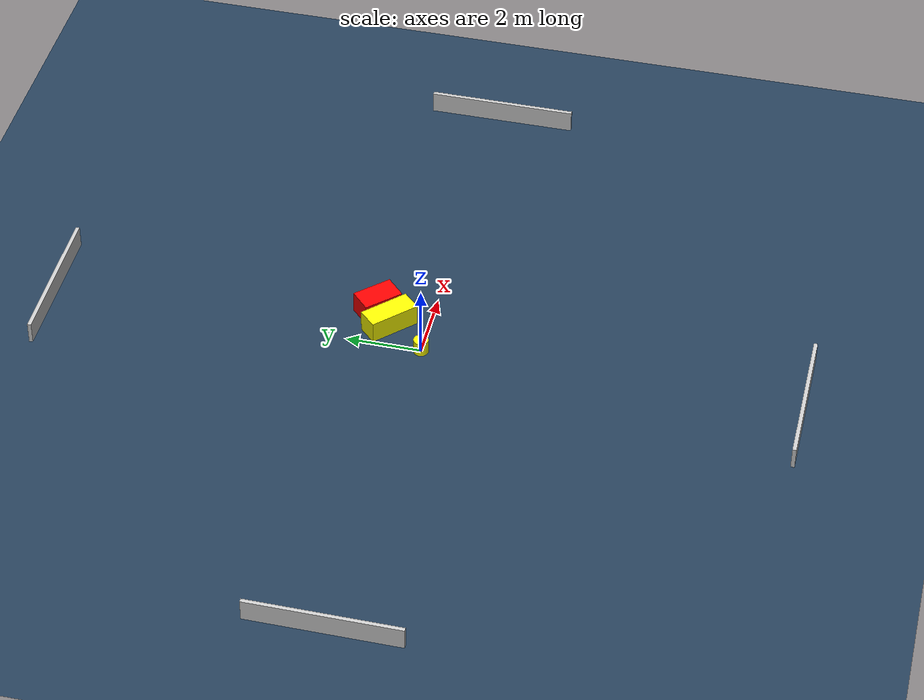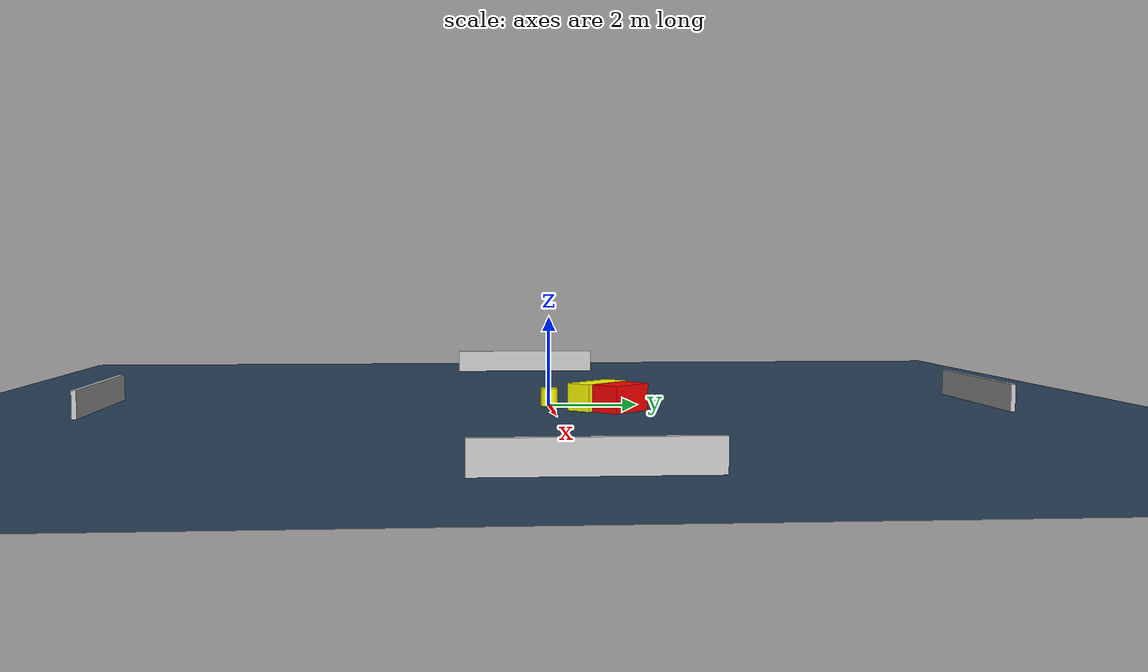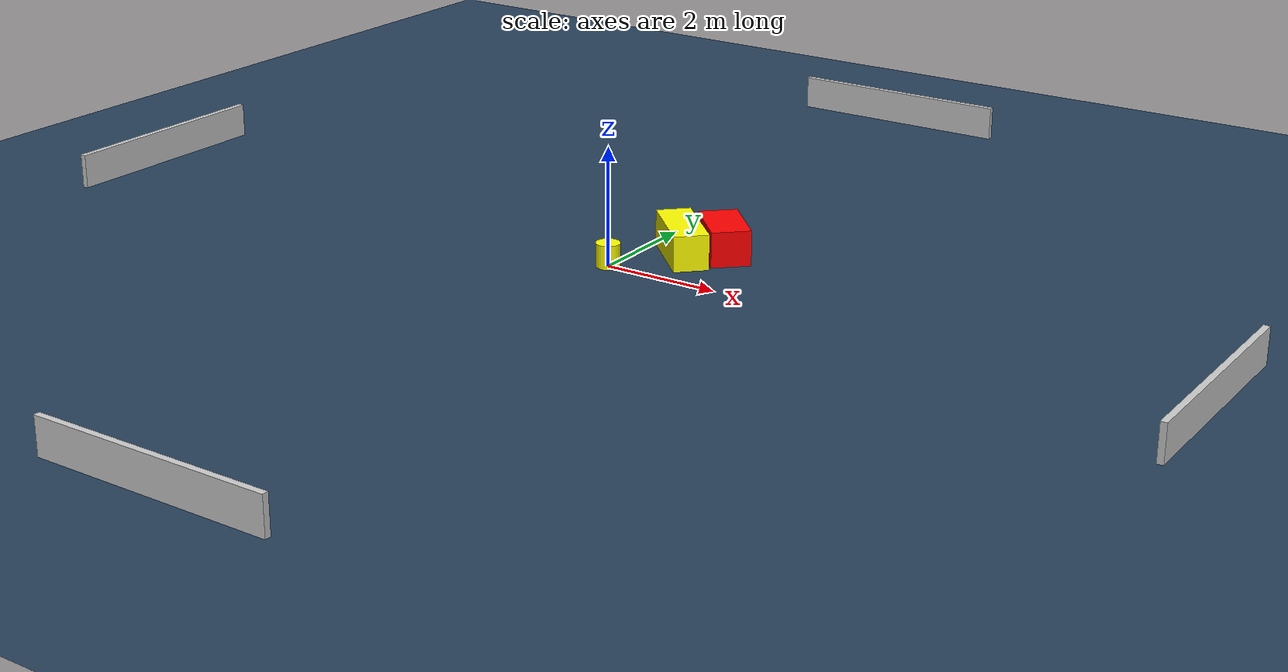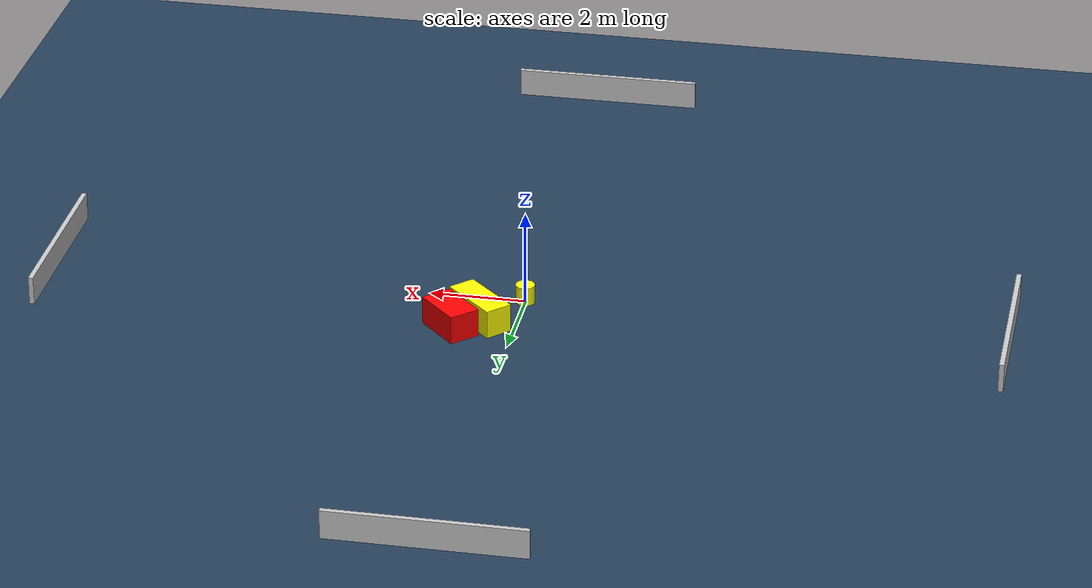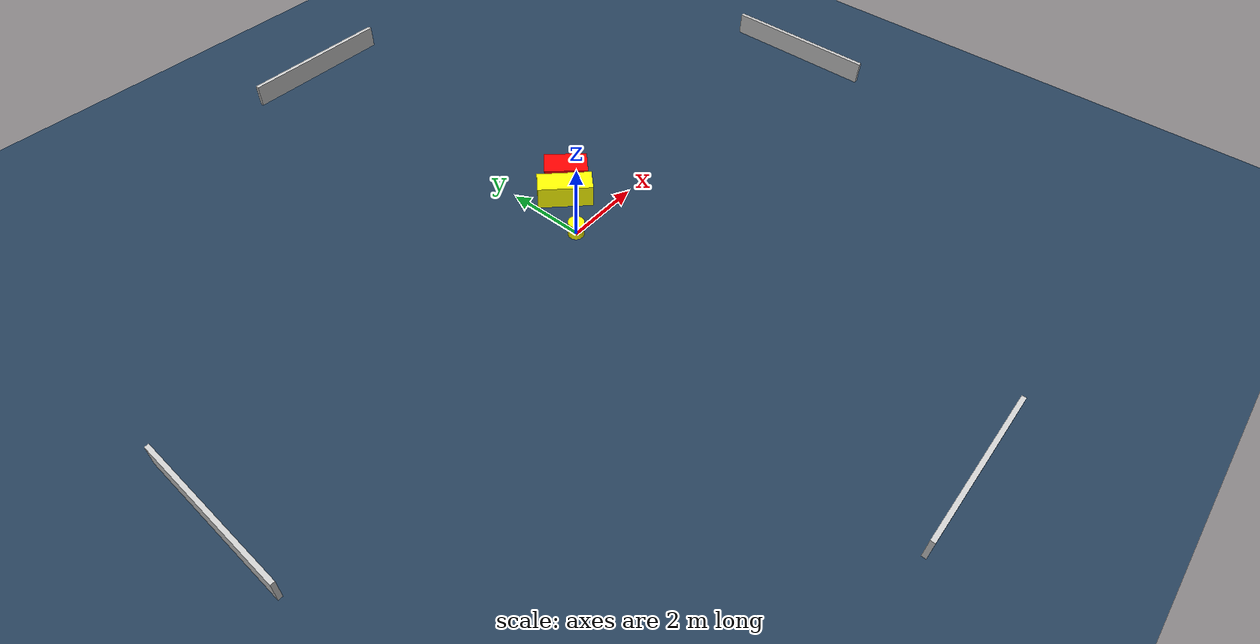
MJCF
<?xml version="1.0" ?>
<mujoco model="generated_environment">
  <option timestep="0.01" integrator="RK4" cone="elliptic"/>
  <default>
    <geom density="1"/>
  </default>
  <asset>
    <texture builtin="gradient" height="3072" name="skybox" rgb1="0.3 0.5 0.7" rgb2="0 0 0" type="skybox" width="512"/>
    <texture builtin="checker" height="300" name="groundplane" rgb1="0.2 0.3 0.4" rgb2="0.1 0.2 0.3" type="2d" width="300"/>
    <material name="groundplane" reflectance="0.2" texrepeat="5 5" texture="groundplane"/>
  </asset>
  <worldbody>
    <light dir="0 0 -1" directional="true" pos="0 0 1.5"/>
    <geom condim="3" friction="0.5 0.005 0.001" material="groundplane" name="floor" pos="0 0 0" size="0 0 0.05" type="plane"/>
    <body name="walls">
      <geom name="wall_1" condim="4" pos="-10.0 0.0 0.3" rgba="0.800000011920929 0.800000011920929 0.800000011920929 1.0" size="0.05 2.0 0.3" type="box"/>
      <geom name="wall_2" condim="4" pos="10.0 0.0 0.3" rgba="0.800000011920929 0.800000011920929 0.800000011920929 1.0" size="0.05 2.0 0.3" type="box"/>
      <geom name="wall_3" condim="4" pos="0.0 -10.0 0.3" rgba="0.800000011920929 0.800000011920929 0.800000011920929 1.0" size="2.0 0.05 0.3" type="box"/>
      <geom name="wall_4" condim="4" pos="0.0 10.0 0.3" rgba="0.800000011920929 0.800000011920929 0.800000011920929 1.0" size="2.0 0.05 0.3" type="box"/>
    </body>
    <body name="robot">
      <joint name="joint_x" type="slide" pos="0 0 0" axis="1 0 0"/>
      <joint name="joint_y" type="slide" pos="0 0 0" axis="0 1 0"/>
      <geom name="robot" type="cylinder" pos="0.0 0.0 0.2" size="0.2 0.2 0.0" mass="5.0" friction="1.0 0.005 0.0001" condim="4" rgba="1.0 1.0 0.0 1.0"/>
    </body>
    <body name="obstacle_1_movable">
      <geom name="obstacle_1_movable" condim="4" pos="0.7466479841798368 1.0299848250269972 0.3" euler="0 0 315.33045151664516" friction="0.0 0.005 0.001" rgba="1.0 1.0 0.0 1.0" size="0.6856967292833005 0.29348172429581953 0.3" type="box" mass="0.1"/>
      <joint type="free"/>
    </body>
    <body name="obstacle_2_static">
      <geom name="obstacle_2_static" condim="4" pos="1.2748259562388928 1.4715263704134274 0.3" euler="0 0 133.80948653673778" friction="0.0 0.005 0.001" rgba="1.0 0.0 0.0 1.0" size="0.5476814632579643 0.33045295177015 0.3" type="box"/>
    </body>
  </worldbody>
  <actuator>
    <motor name="actuator_x" joint="joint_x" gear="1" ctrlrange="-1 1"/>
    <motor name="actuator_y" joint="joint_y" gear="1" ctrlrange="-1 1"/>
  </actuator>
</mujoco>
